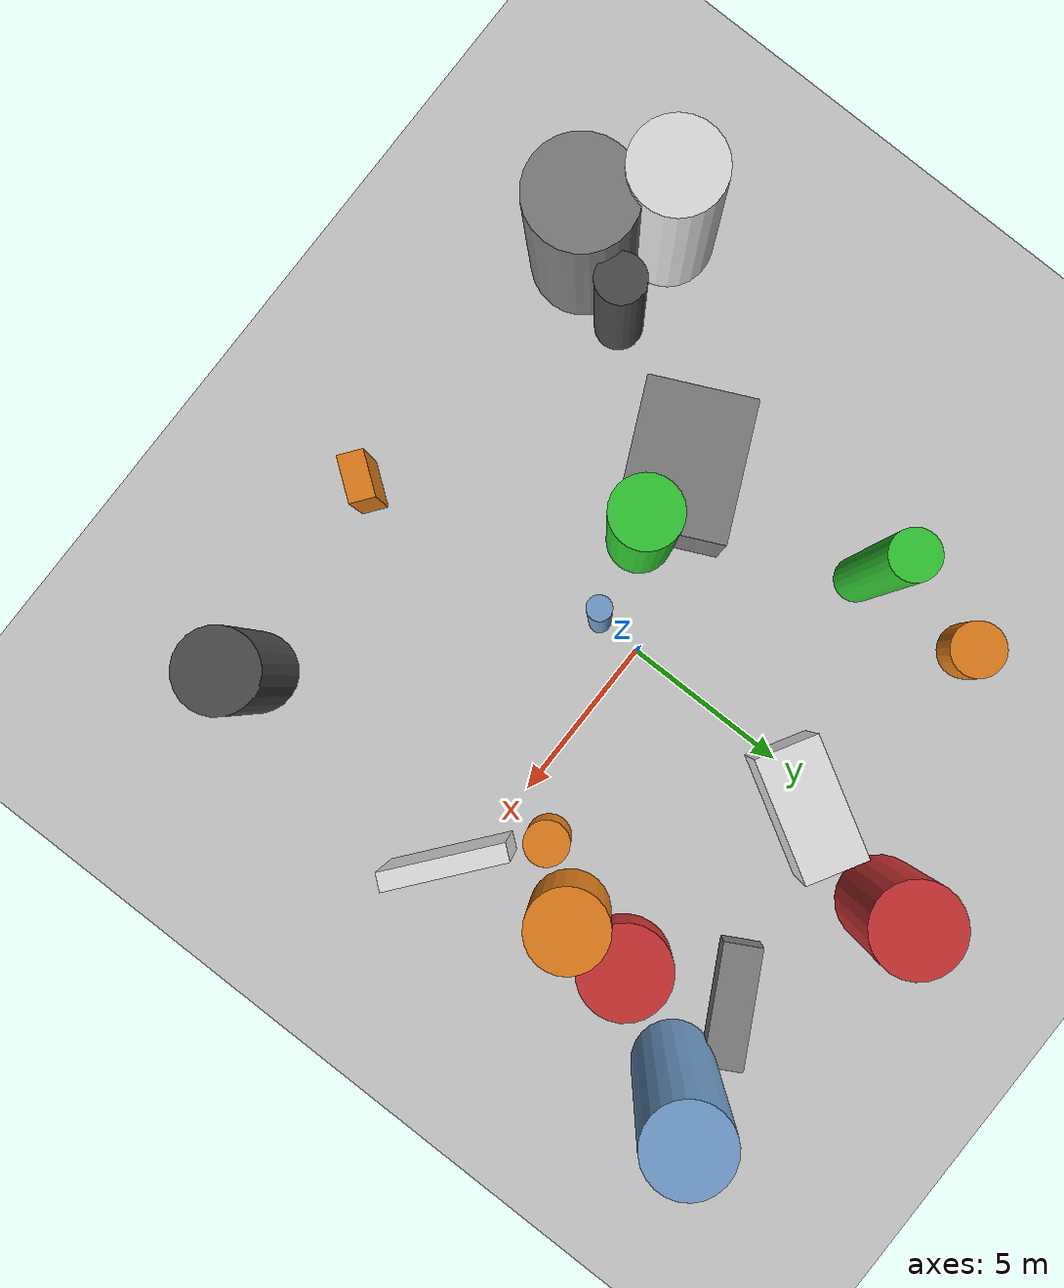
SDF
<?xml version='1.0'?>
<sdf version='1.6'>
  <world name='default'>
    <!-- Sun light -->
    <light name='sun' type='directional'>
      <cast_shadows>1</cast_shadows>
      <pose>0 0 10 0 0 0</pose>
      <diffuse>0.8 0.8 0.8 1</diffuse>
      <specular>0.2 0.2 0.2 1</specular>
      <attenuation>
        <range>1000</range>
        <constant>0.9</constant>
        <linear>0.01</linear>
        <quadratic>0.001</quadratic>
      </attenuation>
      <direction>-0.5 0.1 -0.9</direction>
    </light>

    <!-- Ground plane -->
    <model name='ground_plane'>
      <static>1</static>
      <link name='link'>
        <collision name='collision'>
          <geometry>
            <plane>
              <normal>0 0 1</normal>
              <size>100 100</size>
            </plane>
          </geometry>
          <surface>
            <contact>
              <collide_bitmask>65535</collide_bitmask>
              <ode/>
            </contact>
            <friction>
              <ode>
                <mu>100</mu>
                <mu2>50</mu2>
              </ode>
              <torsional><ode/></torsional>
            </friction>
            <bounce/>
          </surface>
          <max_contacts>10</max_contacts>
        </collision>
        <visual name='visual'>
          <cast_shadows>0</cast_shadows>
          <geometry>
            <plane>
              <normal>0 0 1</normal>
              <size>100 100</size>
            </plane>
          </geometry>
          <material>
            <script>
              <uri>file://media/materials/scripts/gazebo.material</uri>
              <n>Gazebo/Grey</n>
            </script>
          </material>
        </visual>
      </link>
    </model>

    <!-- Environment -->
    <magnetic_field>6e-06 2.3e-05 -4.2e-05</magnetic_field>
    <atmosphere type='adiabatic'/>
    <physics name='default_physics' default='0' type='ode'>
      <gravity>0 0 -9.8</gravity>
      <max_step_size>0.004</max_step_size>
      <real_time_factor>1</real_time_factor>
      <real_time_update_rate>250</real_time_update_rate>
    </physics>
    <scene>
      <ambient>0.4 0.4 0.4 1</ambient>
      <background>0.7 0.7 0.7 1</background>
      <shadows>1</shadows>
    </scene>
    <wind/>
    <spherical_coordinates>
      <surface_model>EARTH_WGS84</surface_model>
      <latitude_deg>0</latitude_deg>
      <longitude_deg>0</longitude_deg>
      <elevation>0</elevation>
      <heading_deg>0</heading_deg>
    </spherical_coordinates>

    <!-- ============ OBSTACLES (18) ============ -->
    <model name='obs_00'>
      <static>1</static>
      <link name='link'>
        <visual name='visual'>
          <geometry>
            <box>
              <size>1.1277 3.4765 1.0783</size>
            </box>
          </geometry>
          <material>
            <script>
              <n>Gazebo/Grey</n>
              <uri>file://media/materials/scripts/gazebo.material</uri>
            </script>
            <ambient>0.5 0.5 0.5 1</ambient>
          </material>
        </visual>
        <collision name='collision'>
          <geometry>
            <box>
              <size>1.1277 3.4765 1.0783</size>
            </box>
          </geometry>
          <max_contacts>10</max_contacts>
          <surface>
            <contact><ode/></contact>
            <bounce/>
            <friction>
              <ode><mu>1</mu><mu2>1</mu2></ode>
              <torsional><ode/></torsional>
            </friction>
          </surface>
        </collision>
      </link>
      <pose>6.1234 8.1955 0.5391 0 0 2.0675</pose>
    </model>

    <model name='obs_01'>
      <static>1</static>
      <link name='link'>
        <visual name='visual'>
          <geometry>
            <cylinder>
              <radius>1.5417</radius>
              <length>5.9890</length>
            </cylinder>
          </geometry>
          <material>
            <script>
              <n>Gazebo/Grey</n>
              <uri>file://media/materials/scripts/gazebo.material</uri>
            </script>
            <ambient>0.5 0.5 0.5 1</ambient>
          </material>
        </visual>
        <collision name='collision'>
          <geometry>
            <cylinder>
              <radius>1.5417</radius>
              <length>5.9890</length>
            </cylinder>
          </geometry>
          <max_contacts>10</max_contacts>
          <surface>
            <contact><ode/></contact>
            <bounce/>
            <friction>
              <ode><mu>1</mu><mu2>1</mu2></ode>
              <torsional><ode/></torsional>
            </friction>
          </surface>
        </collision>
      </link>
      <pose>-7.8597 -8.0737 2.9945 0 0 1.8442</pose>
    </model>

    <model name='obs_02'>
      <static>1</static>
      <link name='link'>
        <visual name='visual'>
          <geometry>
            <cylinder>
              <radius>0.7037</radius>
              <length>4.9477</length>
            </cylinder>
          </geometry>
          <material>
            <script>
              <n>Gazebo/DarkGrey</n>
              <uri>file://media/materials/scripts/gazebo.material</uri>
            </script>
            <ambient>0.3 0.3 0.3 1</ambient>
          </material>
        </visual>
        <collision name='collision'>
          <geometry>
            <cylinder>
              <radius>0.7037</radius>
              <length>4.9477</length>
            </cylinder>
          </geometry>
          <max_contacts>10</max_contacts>
          <surface>
            <contact><ode/></contact>
            <bounce/>
            <friction>
              <ode><mu>1</mu><mu2>1</mu2></ode>
              <torsional><ode/></torsional>
            </friction>
          </surface>
        </collision>
      </link>
      <pose>-7.0221 -6.1614 2.4739 0 0 2.9181</pose>
    </model>

    <model name='obs_03'>
      <static>1</static>
      <link name='link'>
        <visual name='visual'>
          <geometry>
            <box>
              <size>1.8620 3.6378 2.6586</size>
            </box>
          </geometry>
          <material>
            <script>
              <n>Gazebo/White</n>
              <uri>file://media/materials/scripts/gazebo.material</uri>
            </script>
            <ambient>0.9 0.9 0.9 1</ambient>
          </material>
        </visual>
        <collision name='collision'>
          <geometry>
            <box>
              <size>1.8620 3.6378 2.6586</size>
            </box>
          </geometry>
          <max_contacts>10</max_contacts>
          <surface>
            <contact><ode/></contact>
            <bounce/>
            <friction>
              <ode><mu>1</mu><mu2>1</mu2></ode>
              <torsional><ode/></torsional>
            </friction>
          </surface>
        </collision>
      </link>
      <pose>0.5291 6.3043 1.3293 0 0 2.6221</pose>
    </model>

    <model name='obs_04'>
      <static>1</static>
      <link name='link'>
        <visual name='visual'>
          <geometry>
            <box>
              <size>3.9597 3.0346 3.5040</size>
            </box>
          </geometry>
          <material>
            <script>
              <n>Gazebo/Grey</n>
              <uri>file://media/materials/scripts/gazebo.material</uri>
            </script>
            <ambient>0.5 0.5 0.5 1</ambient>
          </material>
        </visual>
        <collision name='collision'>
          <geometry>
            <box>
              <size>3.9597 3.0346 3.5040</size>
            </box>
          </geometry>
          <max_contacts>10</max_contacts>
          <surface>
            <contact><ode/></contact>
            <bounce/>
            <friction>
              <ode><mu>1</mu><mu2>1</mu2></ode>
              <torsional><ode/></torsional>
            </friction>
          </surface>
        </collision>
      </link>
      <pose>-4.6535 -2.0621 1.7520 0 0 0.4397</pose>
    </model>

    <model name='obs_05'>
      <static>1</static>
      <link name='link'>
        <visual name='visual'>
          <geometry>
            <cylinder>
              <radius>0.9586</radius>
              <length>6.8707</length>
            </cylinder>
          </geometry>
          <material>
            <script>
              <n>Gazebo/Green</n>
              <uri>file://media/materials/scripts/gazebo.material</uri>
            </script>
            <ambient>0.2 0.8 0.2 1</ambient>
          </material>
        </visual>
        <collision name='collision'>
          <geometry>
            <cylinder>
              <radius>0.9586</radius>
              <length>6.8707</length>
            </cylinder>
          </geometry>
          <max_contacts>10</max_contacts>
          <surface>
            <contact><ode/></contact>
            <bounce/>
            <friction>
              <ode><mu>1</mu><mu2>1</mu2></ode>
              <torsional><ode/></torsional>
            </friction>
          </surface>
        </collision>
      </link>
      <pose>-2.5390 -1.8795 3.4354 0 0 0.1687</pose>
    </model>

    <model name='obs_06'>
      <static>1</static>
      <link name='link'>
        <visual name='visual'>
          <geometry>
            <cylinder>
              <radius>1.2857</radius>
              <length>5.1693</length>
            </cylinder>
          </geometry>
          <material>
            <script>
              <n>Gazebo/Red</n>
              <uri>file://media/materials/scripts/gazebo.material</uri>
            </script>
            <ambient>0.8 0.2 0.2 1</ambient>
          </material>
        </visual>
        <collision name='collision'>
          <geometry>
            <cylinder>
              <radius>1.2857</radius>
              <length>5.1693</length>
            </cylinder>
          </geometry>
          <max_contacts>10</max_contacts>
          <surface>
            <contact><ode/></contact>
            <bounce/>
            <friction>
              <ode><mu>1</mu><mu2>1</mu2></ode>
              <torsional><ode/></torsional>
            </friction>
          </surface>
        </collision>
      </link>
      <pose>1.3000 9.8047 2.5846 0 0 1.9012</pose>
    </model>

    <model name='obs_07'>
      <static>1</static>
      <link name='link'>
        <visual name='visual'>
          <geometry>
            <cylinder>
              <radius>0.6557</radius>
              <length>7.9481</length>
            </cylinder>
          </geometry>
          <material>
            <script>
              <n>Gazebo/Green</n>
              <uri>file://media/materials/scripts/gazebo.material</uri>
            </script>
            <ambient>0.2 0.8 0.2 1</ambient>
          </material>
        </visual>
        <collision name='collision'>
          <geometry>
            <cylinder>
              <radius>0.6557</radius>
              <length>7.9481</length>
            </cylinder>
          </geometry>
          <max_contacts>10</max_contacts>
          <surface>
            <contact><ode/></contact>
            <bounce/>
            <friction>
              <ode><mu>1</mu><mu2>1</mu2></ode>
              <torsional><ode/></torsional>
            </friction>
          </surface>
        </collision>
      </link>
      <pose>-5.4829 3.6808 3.9741 0 0 0.0931</pose>
    </model>

    <model name='obs_08'>
      <static>1</static>
      <link name='link'>
        <visual name='visual'>
          <geometry>
            <cylinder>
              <radius>1.1731</radius>
              <length>3.6280</length>
            </cylinder>
          </geometry>
          <material>
            <script>
              <n>Gazebo/Orange</n>
              <uri>file://media/materials/scripts/gazebo.material</uri>
            </script>
            <ambient>0.9 0.5 0.1 1</ambient>
          </material>
        </visual>
        <collision name='collision'>
          <geometry>
            <cylinder>
              <radius>1.1731</radius>
              <length>3.6280</length>
            </cylinder>
          </geometry>
          <max_contacts>10</max_contacts>
          <surface>
            <contact><ode/></contact>
            <bounce/>
            <friction>
              <ode><mu>1</mu><mu2>1</mu2></ode>
              <torsional><ode/></torsional>
            </friction>
          </surface>
        </collision>
      </link>
      <pose>6.9573 3.0747 1.8140 0 0 0.7167</pose>
    </model>

    <model name='obs_09'>
      <static>1</static>
      <link name='link'>
        <visual name='visual'>
          <geometry>
            <cylinder>
              <radius>1.3722</radius>
              <length>1.5999</length>
            </cylinder>
          </geometry>
          <material>
            <script>
              <n>Gazebo/Red</n>
              <uri>file://media/materials/scripts/gazebo.material</uri>
            </script>
            <ambient>0.8 0.2 0.2 1</ambient>
          </material>
        </visual>
        <collision name='collision'>
          <geometry>
            <cylinder>
              <radius>1.3722</radius>
              <length>1.5999</length>
            </cylinder>
          </geometry>
          <max_contacts>10</max_contacts>
          <surface>
            <contact><ode/></contact>
            <bounce/>
            <friction>
              <ode><mu>1</mu><mu2>1</mu2></ode>
              <torsional><ode/></torsional>
            </friction>
          </surface>
        </collision>
      </link>
      <pose>7.1644 5.1917 0.7999 0 0 2.1353</pose>
    </model>

    <model name='obs_10'>
      <static>1</static>
      <link name='link'>
        <visual name='visual'>
          <geometry>
            <box>
              <size>1.3626 0.7573 2.3399</size>
            </box>
          </geometry>
          <material>
            <script>
              <n>Gazebo/Orange</n>
              <uri>file://media/materials/scripts/gazebo.material</uri>
            </script>
            <ambient>0.9 0.5 0.1 1</ambient>
          </material>
        </visual>
        <collision name='collision'>
          <geometry>
            <box>
              <size>1.3626 0.7573 2.3399</size>
            </box>
          </geometry>
          <max_contacts>10</max_contacts>
          <surface>
            <contact><ode/></contact>
            <bounce/>
            <friction>
              <ode><mu>1</mu><mu2>1</mu2></ode>
              <torsional><ode/></torsional>
            </friction>
          </surface>
        </collision>
      </link>
      <pose>1.0540 -8.8777 1.1699 0 0 0.9280</pose>
    </model>

    <model name='obs_11'>
      <static>1</static>
      <link name='link'>
        <visual name='visual'>
          <geometry>
            <cylinder>
              <radius>1.3227</radius>
              <length>6.1776</length>
            </cylinder>
          </geometry>
          <material>
            <script>
              <n>Gazebo/White</n>
              <uri>file://media/materials/scripts/gazebo.material</uri>
            </script>
            <ambient>0.9 0.9 0.9 1</ambient>
          </material>
        </visual>
        <collision name='collision'>
          <geometry>
            <cylinder>
              <radius>1.3227</radius>
              <length>6.1776</length>
            </cylinder>
          </geometry>
          <max_contacts>10</max_contacts>
          <surface>
            <contact><ode/></contact>
            <bounce/>
            <friction>
              <ode><mu>1</mu><mu2>1</mu2></ode>
              <torsional><ode/></torsional>
            </friction>
          </surface>
        </collision>
      </link>
      <pose>-9.8110 -6.5723 3.0888 0 0 2.2358</pose>
    </model>

    <model name='obs_12'>
      <static>1</static>
      <link name='link'>
        <visual name='visual'>
          <geometry>
            <cylinder>
              <radius>0.3193</radius>
              <length>7.6007</length>
            </cylinder>
          </geometry>
          <material>
            <script>
              <n>Gazebo/Blue</n>
              <uri>file://media/materials/scripts/gazebo.material</uri>
            </script>
            <ambient>0.447 0.624 0.812 1</ambient>
          </material>
        </visual>
        <collision name='collision'>
          <geometry>
            <cylinder>
              <radius>0.3193</radius>
              <length>7.6007</length>
            </cylinder>
          </geometry>
          <max_contacts>10</max_contacts>
          <surface>
            <contact><ode/></contact>
            <bounce/>
            <friction>
              <ode><mu>1</mu><mu2>1</mu2></ode>
              <torsional><ode/></torsional>
            </friction>
          </surface>
        </collision>
      </link>
      <pose>-0.0028 -1.3218 3.8004 0 0 1.1332</pose>
    </model>

    <model name='obs_13'>
      <static>1</static>
      <link name='link'>
        <visual name='visual'>
          <geometry>
            <cylinder>
              <radius>0.6491</radius>
              <length>1.9275</length>
            </cylinder>
          </geometry>
          <material>
            <script>
              <n>Gazebo/Orange</n>
              <uri>file://media/materials/scripts/gazebo.material</uri>
            </script>
            <ambient>0.9 0.5 0.1 1</ambient>
          </material>
        </visual>
        <collision name='collision'>
          <geometry>
            <cylinder>
              <radius>0.6491</radius>
              <length>1.9275</length>
            </cylinder>
          </geometry>
          <max_contacts>10</max_contacts>
          <surface>
            <contact><ode/></contact>
            <bounce/>
            <friction>
              <ode><mu>1</mu><mu2>1</mu2></ode>
              <torsional><ode/></torsional>
            </friction>
          </surface>
        </collision>
      </link>
      <pose>5.6875 1.3171 0.9638 0 0 1.1307</pose>
    </model>

    <model name='obs_14'>
      <static>1</static>
      <link name='link'>
        <visual name='visual'>
          <geometry>
            <cylinder>
              <radius>1.1804</radius>
              <length>4.5871</length>
            </cylinder>
          </geometry>
          <material>
            <script>
              <n>Gazebo/DarkGrey</n>
              <uri>file://media/materials/scripts/gazebo.material</uri>
            </script>
            <ambient>0.3 0.3 0.3 1</ambient>
          </material>
        </visual>
        <collision name='collision'>
          <geometry>
            <cylinder>
              <radius>1.1804</radius>
              <length>4.5871</length>
            </cylinder>
          </geometry>
          <max_contacts>10</max_contacts>
          <surface>
            <contact><ode/></contact>
            <bounce/>
            <friction>
              <ode><mu>1</mu><mu2>1</mu2></ode>
              <torsional><ode/></torsional>
            </friction>
          </surface>
        </collision>
      </link>
      <pose>7.1592 -8.0928 2.2935 0 0 1.3540</pose>
    </model>

    <model name='obs_15'>
      <static>1</static>
      <link name='link'>
        <visual name='visual'>
          <geometry>
            <cylinder>
              <radius>0.8047</radius>
              <length>1.6514</length>
            </cylinder>
          </geometry>
          <material>
            <script>
              <n>Gazebo/Orange</n>
              <uri>file://media/materials/scripts/gazebo.material</uri>
            </script>
            <ambient>0.9 0.5 0.1 1</ambient>
          </material>
        </visual>
        <collision name='collision'>
          <geometry>
            <cylinder>
              <radius>0.8047</radius>
              <length>1.6514</length>
            </cylinder>
          </geometry>
          <max_contacts>10</max_contacts>
          <surface>
            <contact><ode/></contact>
            <bounce/>
            <friction>
              <ode><mu>1</mu><mu2>1</mu2></ode>
              <torsional><ode/></torsional>
            </friction>
          </surface>
        </collision>
      </link>
      <pose>-5.7717 7.3623 0.8257 0 0 0.0825</pose>
    </model>

    <model name='obs_16'>
      <static>1</static>
      <link name='link'>
        <visual name='visual'>
          <geometry>
            <box>
              <size>3.5230 0.5432 3.0691</size>
            </box>
          </geometry>
          <material>
            <script>
              <n>Gazebo/White</n>
              <uri>file://media/materials/scripts/gazebo.material</uri>
            </script>
            <ambient>0.9 0.9 0.9 1</ambient>
          </material>
        </visual>
        <collision name='collision'>
          <geometry>
            <box>
              <size>3.5230 0.5432 3.0691</size>
            </box>
          </geometry>
          <max_contacts>10</max_contacts>
          <surface>
            <contact><ode/></contact>
            <bounce/>
            <friction>
              <ode><mu>1</mu><mu2>1</mu2></ode>
              <torsional><ode/></torsional>
            </friction>
          </surface>
        </collision>
      </link>
      <pose>7.7511 -0.4900 1.5345 0 0 2.4644</pose>
    </model>

    <model name='obs_17'>
      <static>1</static>
      <link name='link'>
        <visual name='visual'>
          <geometry>
            <cylinder>
              <radius>1.1851</radius>
              <length>7.9491</length>
            </cylinder>
          </geometry>
          <material>
            <script>
              <n>Gazebo/Blue</n>
              <uri>file://media/materials/scripts/gazebo.material</uri>
            </script>
            <ambient>0.447 0.624 0.812 1</ambient>
          </material>
        </visual>
        <collision name='collision'>
          <geometry>
            <cylinder>
              <radius>1.1851</radius>
              <length>7.9491</length>
            </cylinder>
          </geometry>
          <max_contacts>10</max_contacts>
          <surface>
            <contact><ode/></contact>
            <bounce/>
            <friction>
              <ode><mu>1</mu><mu2>1</mu2></ode>
              <torsional><ode/></torsional>
            </friction>
          </surface>
        </collision>
      </link>
      <pose>8.5117 7.9862 3.9746 0 0 2.2772</pose>
    </model>

    <!-- GUI camera -->
    <gui fullscreen='0'>
      <camera name='user_camera'>
        <pose>-15 0 18 0 0.85 0.15</pose>
        <view_controller>orbit</view_controller>
        <projection_type>perspective</projection_type>
      </camera>
    </gui>
  </world>
</sdf>
